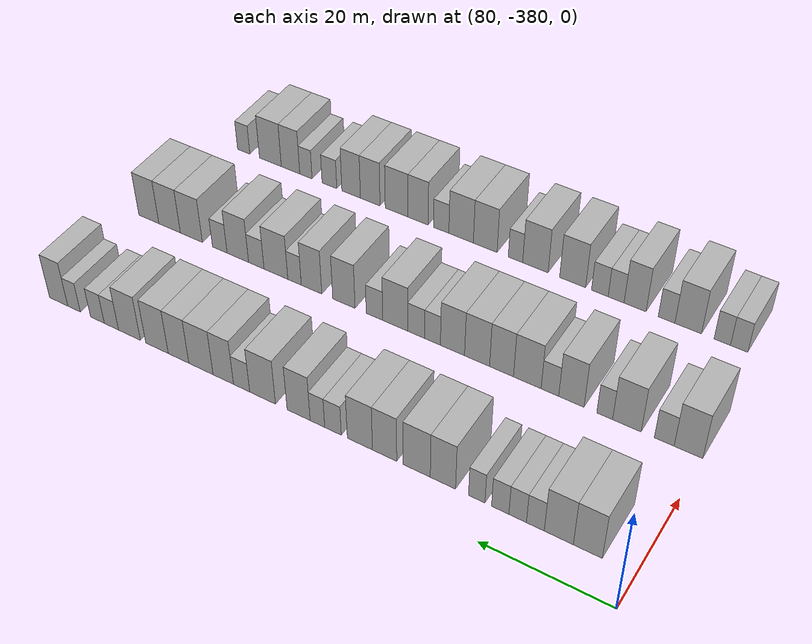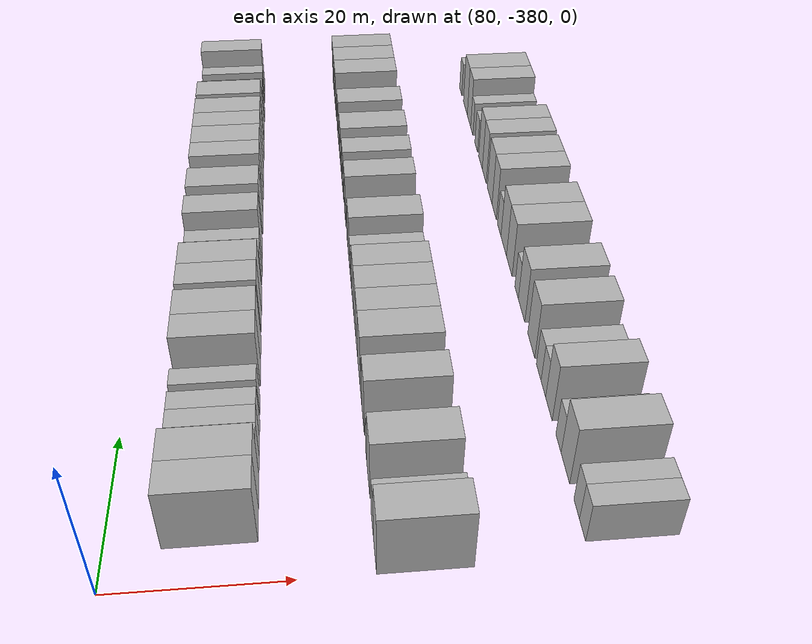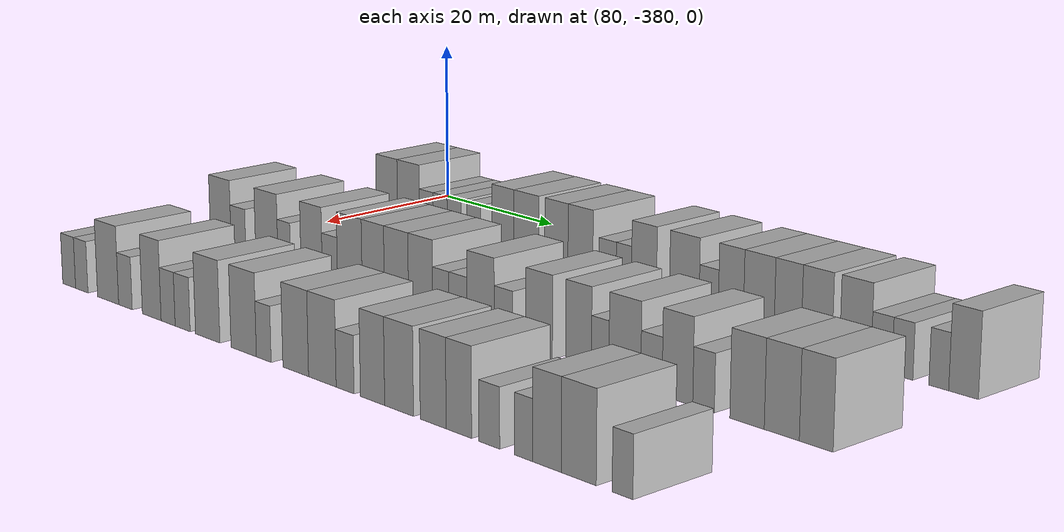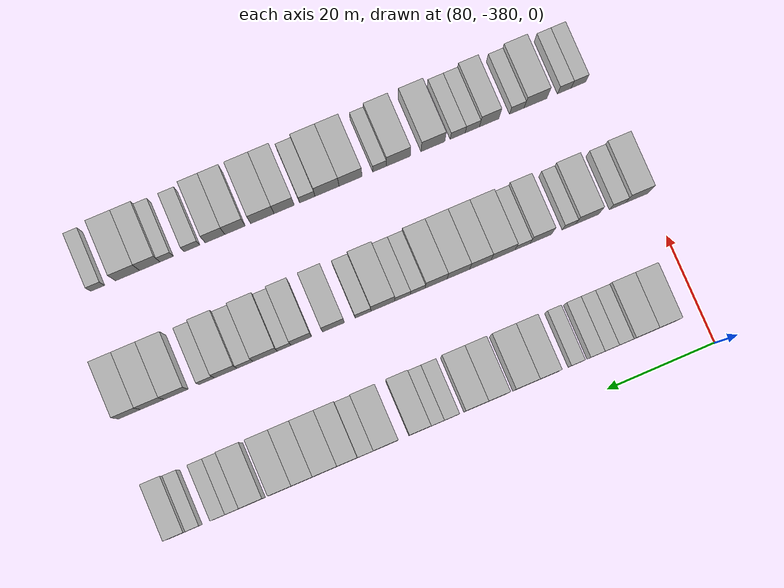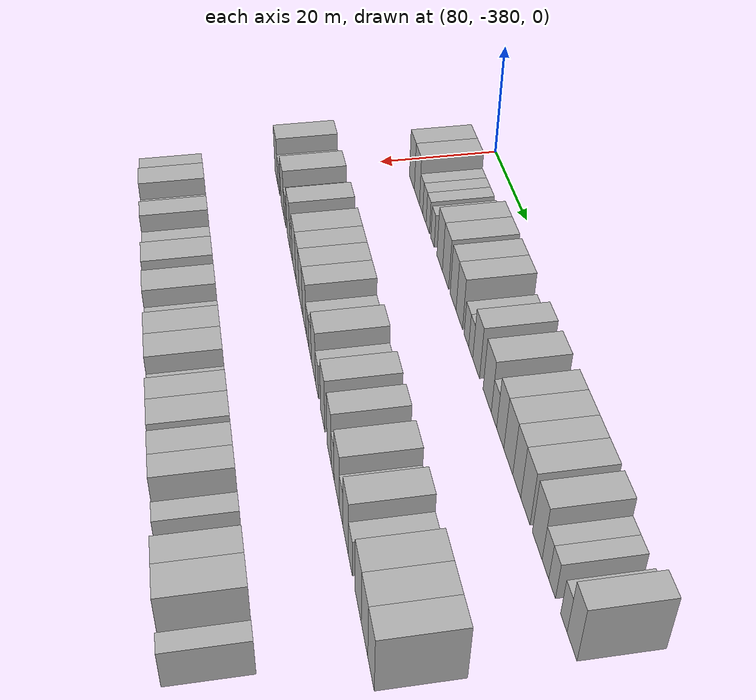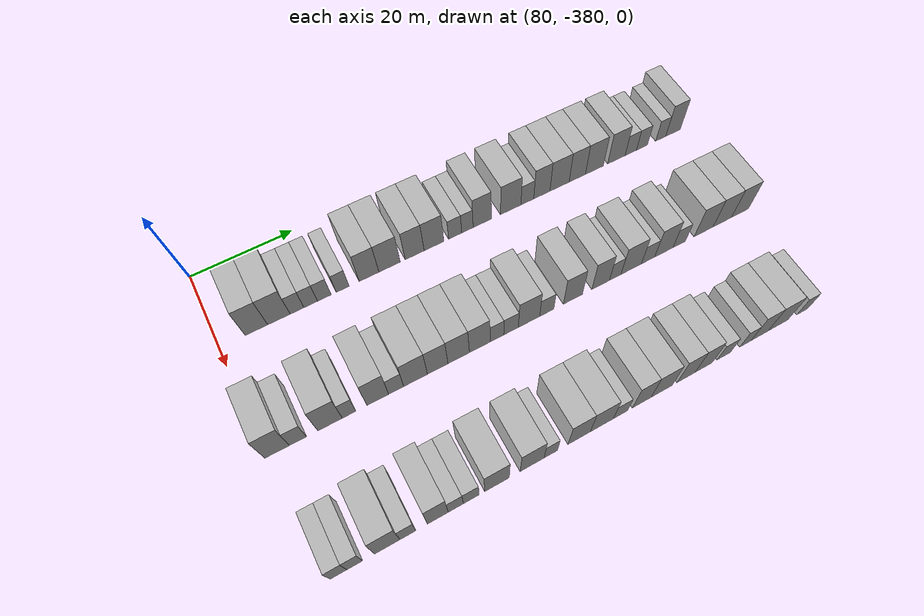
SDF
<sdf version="1.6">
 <world name="default">
  <model name="building_561">
   <static>1</static>
   <pose>91.0000 -373.1026 0 0.000000 0.000000 0.000000</pose>
   <link name="link">
    <pose>0 0 4.50 0 0 0</pose>
    <collision name="collision"><geometry><box><size>10.0000 4.1841 9.0000</size></box></geometry></collision>
    <visual name="visual">
     <cast_shadows>0</cast_shadows>
     <geometry><box><size>10.0000 4.1841 9.0000</size></box></geometry>
     <material>
      <script>
       <uri>model://HANNAS_wall/materials/scripts</uri>
       <uri>model://HANNAS_wall/materials/textures</uri>
       <name>vrc/HANNAS_wall</name>
      </script>
     </material>
    </visual>
   </link>
  </model>
  <model name="building_562">
   <static>1</static>
   <pose>91.0000 -368.8882 0 0.000000 0.000000 0.000000</pose>
   <link name="link">
    <pose>0 0 4.50 0 0 0</pose>
    <collision name="collision"><geometry><box><size>10.0000 4.2448 9.0000</size></box></geometry></collision>
    <visual name="visual">
     <cast_shadows>0</cast_shadows>
     <geometry><box><size>10.0000 4.2448 9.0000</size></box></geometry>
     <material>
      <script>
       <uri>model://HANNAS_wall/materials/scripts</uri>
       <uri>model://HANNAS_wall/materials/textures</uri>
       <name>vrc/HANNAS_wall</name>
      </script>
     </material>
    </visual>
   </link>
  </model>
  <model name="building_563">
   <static>1</static>
   <pose>91.0000 -365.4491 0 0.000000 0.000000 0.000000</pose>
   <link name="link">
    <pose>0 0 3.00 0 0 0</pose>
    <collision name="collision"><geometry><box><size>10.0000 2.6333 6.0000</size></box></geometry></collision>
    <visual name="visual">
     <cast_shadows>0</cast_shadows>
     <geometry><box><size>10.0000 2.6333 6.0000</size></box></geometry>
     <material>
      <script>
       <uri>model://HANNAS_wall/materials/scripts</uri>
       <uri>model://HANNAS_wall/materials/textures</uri>
       <name>vrc/HANNAS_wall</name>
      </script>
     </material>
    </visual>
   </link>
  </model>
  <model name="building_564">
   <static>1</static>
   <pose>91.0000 -362.8180 0 0.000000 0.000000 0.000000</pose>
   <link name="link">
    <pose>0 0 3.00 0 0 0</pose>
    <collision name="collision"><geometry><box><size>10.0000 2.6289 6.0000</size></box></geometry></collision>
    <visual name="visual">
     <cast_shadows>0</cast_shadows>
     <geometry><box><size>10.0000 2.6289 6.0000</size></box></geometry>
     <material>
      <script>
       <uri>model://HANNAS_wall/materials/scripts</uri>
       <uri>model://HANNAS_wall/materials/textures</uri>
       <name>vrc/HANNAS_wall</name>
      </script>
     </material>
    </visual>
   </link>
  </model>
  <model name="building_565">
   <static>1</static>
   <pose>91.0000 -360.1915 0 0.000000 0.000000 0.000000</pose>
   <link name="link">
    <pose>0 0 3.00 0 0 0</pose>
    <collision name="collision"><geometry><box><size>10.0000 2.6241 6.0000</size></box></geometry></collision>
    <visual name="visual">
     <cast_shadows>0</cast_shadows>
     <geometry><box><size>10.0000 2.6241 6.0000</size></box></geometry>
     <material>
      <script>
       <uri>model://HANNAS_wall/materials/scripts</uri>
       <uri>model://HANNAS_wall/materials/textures</uri>
       <name>vrc/HANNAS_wall</name>
      </script>
     </material>
    </visual>
   </link>
  </model>
  <model name="building_566">
   <static>1</static>
   <pose>91.0000 -356.6209 0 0.000000 0.000000 0.000000</pose>
   <link name="link">
    <pose>0 0 3.00 0 0 0</pose>
    <collision name="collision"><geometry><box><size>10.0000 2.5173 6.0000</size></box></geometry></collision>
    <visual name="visual">
     <cast_shadows>0</cast_shadows>
     <geometry><box><size>10.0000 2.5173 6.0000</size></box></geometry>
     <material>
      <script>
       <uri>model://HANNAS_wall/materials/scripts</uri>
       <uri>model://HANNAS_wall/materials/textures</uri>
       <name>vrc/HANNAS_wall</name>
      </script>
     </material>
    </visual>
   </link>
  </model>
  <model name="building_567">
   <static>1</static>
   <pose>91.0000 -351.3866 0 0.000000 0.000000 0.000000</pose>
   <link name="link">
    <pose>0 0 4.50 0 0 0</pose>
    <collision name="collision"><geometry><box><size>10.0000 3.9512 9.0000</size></box></geometry></collision>
    <visual name="visual">
     <cast_shadows>0</cast_shadows>
     <geometry><box><size>10.0000 3.9512 9.0000</size></box></geometry>
     <material>
      <script>
       <uri>model://HANNAS_wall/materials/scripts</uri>
       <uri>model://HANNAS_wall/materials/textures</uri>
       <name>vrc/HANNAS_wall</name>
      </script>
     </material>
    </visual>
   </link>
  </model>
  <model name="building_568">
   <static>1</static>
   <pose>91.0000 -347.2450 0 0.000000 0.000000 0.000000</pose>
   <link name="link">
    <pose>0 0 4.50 0 0 0</pose>
    <collision name="collision"><geometry><box><size>10.0000 4.3321 9.0000</size></box></geometry></collision>
    <visual name="visual">
     <cast_shadows>0</cast_shadows>
     <geometry><box><size>10.0000 4.3321 9.0000</size></box></geometry>
     <material>
      <script>
       <uri>model://HANNAS_wall/materials/scripts</uri>
       <uri>model://HANNAS_wall/materials/textures</uri>
       <name>vrc/HANNAS_wall</name>
      </script>
     </material>
    </visual>
   </link>
  </model>
  <model name="building_569">
   <static>1</static>
   <pose>91.0000 -342.1196 0 0.000000 0.000000 0.000000</pose>
   <link name="link">
    <pose>0 0 4.50 0 0 0</pose>
    <collision name="collision"><geometry><box><size>10.0000 3.9186 9.0000</size></box></geometry></collision>
    <visual name="visual">
     <cast_shadows>0</cast_shadows>
     <geometry><box><size>10.0000 3.9186 9.0000</size></box></geometry>
     <material>
      <script>
       <uri>model://HANNAS_wall/materials/scripts</uri>
       <uri>model://HANNAS_wall/materials/textures</uri>
       <name>vrc/HANNAS_wall</name>
      </script>
     </material>
    </visual>
   </link>
  </model>
  <model name="building_570">
   <static>1</static>
   <pose>91.0000 -338.0976 0 0.000000 0.000000 0.000000</pose>
   <link name="link">
    <pose>0 0 4.50 0 0 0</pose>
    <collision name="collision"><geometry><box><size>10.0000 4.1255 9.0000</size></box></geometry></collision>
    <visual name="visual">
     <cast_shadows>0</cast_shadows>
     <geometry><box><size>10.0000 4.1255 9.0000</size></box></geometry>
     <material>
      <script>
       <uri>model://HANNAS_wall/materials/scripts</uri>
       <uri>model://HANNAS_wall/materials/textures</uri>
       <name>vrc/HANNAS_wall</name>
      </script>
     </material>
    </visual>
   </link>
  </model>
  <model name="building_571">
   <static>1</static>
   <pose>91.0000 -333.6512 0 0.000000 0.000000 0.000000</pose>
   <link name="link">
    <pose>0 0 3.00 0 0 0</pose>
    <collision name="collision"><geometry><box><size>10.0000 2.7671 6.0000</size></box></geometry></collision>
    <visual name="visual">
     <cast_shadows>0</cast_shadows>
     <geometry><box><size>10.0000 2.7671 6.0000</size></box></geometry>
     <material>
      <script>
       <uri>model://HANNAS_wall/materials/scripts</uri>
       <uri>model://HANNAS_wall/materials/textures</uri>
       <name>vrc/HANNAS_wall</name>
      </script>
     </material>
    </visual>
   </link>
  </model>
  <model name="building_572">
   <static>1</static>
   <pose>91.0000 -331.0430 0 0.000000 0.000000 0.000000</pose>
   <link name="link">
    <pose>0 0 3.00 0 0 0</pose>
    <collision name="collision"><geometry><box><size>10.0000 2.4495 6.0000</size></box></geometry></collision>
    <visual name="visual">
     <cast_shadows>0</cast_shadows>
     <geometry><box><size>10.0000 2.4495 6.0000</size></box></geometry>
     <material>
      <script>
       <uri>model://HANNAS_wall/materials/scripts</uri>
       <uri>model://HANNAS_wall/materials/textures</uri>
       <name>vrc/HANNAS_wall</name>
      </script>
     </material>
    </visual>
   </link>
  </model>
  <model name="building_573">
   <static>1</static>
   <pose>91.0000 -327.8552 0 0.000000 0.000000 0.000000</pose>
   <link name="link">
    <pose>0 0 4.50 0 0 0</pose>
    <collision name="collision"><geometry><box><size>10.0000 3.9260 9.0000</size></box></geometry></collision>
    <visual name="visual">
     <cast_shadows>0</cast_shadows>
     <geometry><box><size>10.0000 3.9260 9.0000</size></box></geometry>
     <material>
      <script>
       <uri>model://HANNAS_wall/materials/scripts</uri>
       <uri>model://HANNAS_wall/materials/textures</uri>
       <name>vrc/HANNAS_wall</name>
      </script>
     </material>
    </visual>
   </link>
  </model>
  <model name="building_574">
   <static>1</static>
   <pose>91.0000 -321.6479 0 0.000000 0.000000 0.000000</pose>
   <link name="link">
    <pose>0 0 4.50 0 0 0</pose>
    <collision name="collision"><geometry><box><size>10.0000 4.4885 9.0000</size></box></geometry></collision>
    <visual name="visual">
     <cast_shadows>0</cast_shadows>
     <geometry><box><size>10.0000 4.4885 9.0000</size></box></geometry>
     <material>
      <script>
       <uri>model://HANNAS_wall/materials/scripts</uri>
       <uri>model://HANNAS_wall/materials/textures</uri>
       <name>vrc/HANNAS_wall</name>
      </script>
     </material>
    </visual>
   </link>
  </model>
  <model name="building_575">
   <static>1</static>
   <pose>91.0000 -317.9782 0 0.000000 0.000000 0.000000</pose>
   <link name="link">
    <pose>0 0 3.00 0 0 0</pose>
    <collision name="collision"><geometry><box><size>10.0000 2.8510 6.0000</size></box></geometry></collision>
    <visual name="visual">
     <cast_shadows>0</cast_shadows>
     <geometry><box><size>10.0000 2.8510 6.0000</size></box></geometry>
     <material>
      <script>
       <uri>model://HANNAS_wall/materials/scripts</uri>
       <uri>model://HANNAS_wall/materials/textures</uri>
       <name>vrc/HANNAS_wall</name>
      </script>
     </material>
    </visual>
   </link>
  </model>
  <model name="building_576">
   <static>1</static>
   <pose>91.0000 -314.7256 0 0.000000 0.000000 0.000000</pose>
   <link name="link">
    <pose>0 0 4.50 0 0 0</pose>
    <collision name="collision"><geometry><box><size>10.0000 3.6543 9.0000</size></box></geometry></collision>
    <visual name="visual">
     <cast_shadows>0</cast_shadows>
     <geometry><box><size>10.0000 3.6543 9.0000</size></box></geometry>
     <material>
      <script>
       <uri>model://HANNAS_wall/materials/scripts</uri>
       <uri>model://HANNAS_wall/materials/textures</uri>
       <name>vrc/HANNAS_wall</name>
      </script>
     </material>
    </visual>
   </link>
  </model>
  <model name="building_577">
   <static>1</static>
   <pose>91.0000 -310.7079 0 0.000000 0.000000 0.000000</pose>
   <link name="link">
    <pose>0 0 4.50 0 0 0</pose>
    <collision name="collision"><geometry><box><size>10.0000 4.3811 9.0000</size></box></geometry></collision>
    <visual name="visual">
     <cast_shadows>0</cast_shadows>
     <geometry><box><size>10.0000 4.3811 9.0000</size></box></geometry>
     <material>
      <script>
       <uri>model://HANNAS_wall/materials/scripts</uri>
       <uri>model://HANNAS_wall/materials/textures</uri>
       <name>vrc/HANNAS_wall</name>
      </script>
     </material>
    </visual>
   </link>
  </model>
  <model name="building_578">
   <static>1</static>
   <pose>91.0000 -306.6256 0 0.000000 0.000000 0.000000</pose>
   <link name="link">
    <pose>0 0 4.50 0 0 0</pose>
    <collision name="collision"><geometry><box><size>10.0000 3.7835 9.0000</size></box></geometry></collision>
    <visual name="visual">
     <cast_shadows>0</cast_shadows>
     <geometry><box><size>10.0000 3.7835 9.0000</size></box></geometry>
     <material>
      <script>
       <uri>model://HANNAS_wall/materials/scripts</uri>
       <uri>model://HANNAS_wall/materials/textures</uri>
       <name>vrc/HANNAS_wall</name>
      </script>
     </material>
    </visual>
   </link>
  </model>
  <model name="building_579">
   <static>1</static>
   <pose>91.0000 -302.6417 0 0.000000 0.000000 0.000000</pose>
   <link name="link">
    <pose>0 0 4.50 0 0 0</pose>
    <collision name="collision"><geometry><box><size>10.0000 4.1842 9.0000</size></box></geometry></collision>
    <visual name="visual">
     <cast_shadows>0</cast_shadows>
     <geometry><box><size>10.0000 4.1842 9.0000</size></box></geometry>
     <material>
      <script>
       <uri>model://HANNAS_wall/materials/scripts</uri>
       <uri>model://HANNAS_wall/materials/textures</uri>
       <name>vrc/HANNAS_wall</name>
      </script>
     </material>
    </visual>
   </link>
  </model>
  <model name="building_580">
   <static>1</static>
   <pose>91.0000 -297.4705 0 0.000000 0.000000 0.000000</pose>
   <link name="link">
    <pose>0 0 4.50 0 0 0</pose>
    <collision name="collision"><geometry><box><size>10.0000 4.1581 9.0000</size></box></geometry></collision>
    <visual name="visual">
     <cast_shadows>0</cast_shadows>
     <geometry><box><size>10.0000 4.1581 9.0000</size></box></geometry>
     <material>
      <script>
       <uri>model://HANNAS_wall/materials/scripts</uri>
       <uri>model://HANNAS_wall/materials/textures</uri>
       <name>vrc/HANNAS_wall</name>
      </script>
     </material>
    </visual>
   </link>
  </model>
  <model name="building_581">
   <static>1</static>
   <pose>91.0000 -294.0285 0 0.000000 0.000000 0.000000</pose>
   <link name="link">
    <pose>0 0 3.00 0 0 0</pose>
    <collision name="collision"><geometry><box><size>10.0000 2.7260 6.0000</size></box></geometry></collision>
    <visual name="visual">
     <cast_shadows>0</cast_shadows>
     <geometry><box><size>10.0000 2.7260 6.0000</size></box></geometry>
     <material>
      <script>
       <uri>model://HANNAS_wall/materials/scripts</uri>
       <uri>model://HANNAS_wall/materials/textures</uri>
       <name>vrc/HANNAS_wall</name>
      </script>
     </material>
    </visual>
   </link>
  </model>
  <model name="building_582">
   <static>1</static>
   <pose>91.0000 -291.3356 0 0.000000 0.000000 0.000000</pose>
   <link name="link">
    <pose>0 0 3.00 0 0 0</pose>
    <collision name="collision"><geometry><box><size>10.0000 2.6598 6.0000</size></box></geometry></collision>
    <visual name="visual">
     <cast_shadows>0</cast_shadows>
     <geometry><box><size>10.0000 2.6598 6.0000</size></box></geometry>
     <material>
      <script>
       <uri>model://HANNAS_wall/materials/scripts</uri>
       <uri>model://HANNAS_wall/materials/textures</uri>
       <name>vrc/HANNAS_wall</name>
      </script>
     </material>
    </visual>
   </link>
  </model>
  <model name="building_583">
   <static>1</static>
   <pose>91.0000 -286.7794 0 0.000000 0.000000 0.000000</pose>
   <link name="link">
    <pose>0 0 3.00 0 0 0</pose>
    <collision name="collision"><geometry><box><size>10.0000 2.4525 6.0000</size></box></geometry></collision>
    <visual name="visual">
     <cast_shadows>0</cast_shadows>
     <geometry><box><size>10.0000 2.4525 6.0000</size></box></geometry>
     <material>
      <script>
       <uri>model://HANNAS_wall/materials/scripts</uri>
       <uri>model://HANNAS_wall/materials/textures</uri>
       <name>vrc/HANNAS_wall</name>
      </script>
     </material>
    </visual>
   </link>
  </model>
  <model name="building_584">
   <static>1</static>
   <pose>91.0000 -283.7495 0 0.000000 0.000000 0.000000</pose>
   <link name="link">
    <pose>0 0 4.50 0 0 0</pose>
    <collision name="collision"><geometry><box><size>10.0000 3.6072 9.0000</size></box></geometry></collision>
    <visual name="visual">
     <cast_shadows>0</cast_shadows>
     <geometry><box><size>10.0000 3.6072 9.0000</size></box></geometry>
     <material>
      <script>
       <uri>model://HANNAS_wall/materials/scripts</uri>
       <uri>model://HANNAS_wall/materials/textures</uri>
       <name>vrc/HANNAS_wall</name>
      </script>
     </material>
    </visual>
   </link>
  </model>
  <model name="building_740">
   <static>1</static>
   <pose>113.0000 -377.8678 0 0.000000 0.000000 0.000000</pose>
   <link name="link">
    <pose>0 0 4.50 0 0 0</pose>
    <collision name="collision"><geometry><box><size>10.0000 4.2645 9.0000</size></box></geometry></collision>
    <visual name="visual">
     <cast_shadows>0</cast_shadows>
     <geometry><box><size>10.0000 4.2645 9.0000</size></box></geometry>
     <material>
      <script>
       <uri>model://HANNAS_wall/materials/scripts</uri>
       <uri>model://HANNAS_wall/materials/textures</uri>
       <name>vrc/HANNAS_wall</name>
      </script>
     </material>
    </visual>
   </link>
  </model>
  <model name="building_741">
   <static>1</static>
   <pose>113.0000 -374.2464 0 0.000000 0.000000 0.000000</pose>
   <link name="link">
    <pose>0 0 3.00 0 0 0</pose>
    <collision name="collision"><geometry><box><size>10.0000 2.9784 6.0000</size></box></geometry></collision>
    <visual name="visual">
     <cast_shadows>0</cast_shadows>
     <geometry><box><size>10.0000 2.9784 6.0000</size></box></geometry>
     <material>
      <script>
       <uri>model://HANNAS_wall/materials/scripts</uri>
       <uri>model://HANNAS_wall/materials/textures</uri>
       <name>vrc/HANNAS_wall</name>
      </script>
     </material>
    </visual>
   </link>
  </model>
  <model name="building_742">
   <static>1</static>
   <pose>113.0000 -368.5615 0 0.000000 0.000000 0.000000</pose>
   <link name="link">
    <pose>0 0 4.50 0 0 0</pose>
    <collision name="collision"><geometry><box><size>10.0000 4.3914 9.0000</size></box></geometry></collision>
    <visual name="visual">
     <cast_shadows>0</cast_shadows>
     <geometry><box><size>10.0000 4.3914 9.0000</size></box></geometry>
     <material>
      <script>
       <uri>model://HANNAS_wall/materials/scripts</uri>
       <uri>model://HANNAS_wall/materials/textures</uri>
       <name>vrc/HANNAS_wall</name>
      </script>
     </material>
    </visual>
   </link>
  </model>
  <model name="building_743">
   <static>1</static>
   <pose>113.0000 -365.1352 0 0.000000 0.000000 0.000000</pose>
   <link name="link">
    <pose>0 0 3.00 0 0 0</pose>
    <collision name="collision"><geometry><box><size>10.0000 2.4612 6.0000</size></box></geometry></collision>
    <visual name="visual">
     <cast_shadows>0</cast_shadows>
     <geometry><box><size>10.0000 2.4612 6.0000</size></box></geometry>
     <material>
      <script>
       <uri>model://HANNAS_wall/materials/scripts</uri>
       <uri>model://HANNAS_wall/materials/textures</uri>
       <name>vrc/HANNAS_wall</name>
      </script>
     </material>
    </visual>
   </link>
  </model>
  <model name="building_744">
   <static>1</static>
   <pose>113.0000 -359.8933 0 0.000000 0.000000 0.000000</pose>
   <link name="link">
    <pose>0 0 4.50 0 0 0</pose>
    <collision name="collision"><geometry><box><size>10.0000 4.0225 9.0000</size></box></geometry></collision>
    <visual name="visual">
     <cast_shadows>0</cast_shadows>
     <geometry><box><size>10.0000 4.0225 9.0000</size></box></geometry>
     <material>
      <script>
       <uri>model://HANNAS_wall/materials/scripts</uri>
       <uri>model://HANNAS_wall/materials/textures</uri>
       <name>vrc/HANNAS_wall</name>
      </script>
     </material>
    </visual>
   </link>
  </model>
  <model name="building_745">
   <static>1</static>
   <pose>113.0000 -356.4724 0 0.000000 0.000000 0.000000</pose>
   <link name="link">
    <pose>0 0 3.00 0 0 0</pose>
    <collision name="collision"><geometry><box><size>10.0000 2.8193 6.0000</size></box></geometry></collision>
    <visual name="visual">
     <cast_shadows>0</cast_shadows>
     <geometry><box><size>10.0000 2.8193 6.0000</size></box></geometry>
     <material>
      <script>
       <uri>model://HANNAS_wall/materials/scripts</uri>
       <uri>model://HANNAS_wall/materials/textures</uri>
       <name>vrc/HANNAS_wall</name>
      </script>
     </material>
    </visual>
   </link>
  </model>
  <model name="building_746">
   <static>1</static>
   <pose>113.0000 -352.8179 0 0.000000 0.000000 0.000000</pose>
   <link name="link">
    <pose>0 0 4.50 0 0 0</pose>
    <collision name="collision"><geometry><box><size>10.0000 4.4898 9.0000</size></box></geometry></collision>
    <visual name="visual">
     <cast_shadows>0</cast_shadows>
     <geometry><box><size>10.0000 4.4898 9.0000</size></box></geometry>
     <material>
      <script>
       <uri>model://HANNAS_wall/materials/scripts</uri>
       <uri>model://HANNAS_wall/materials/textures</uri>
       <name>vrc/HANNAS_wall</name>
      </script>
     </material>
    </visual>
   </link>
  </model>
  <model name="building_747">
   <static>1</static>
   <pose>113.0000 -348.5991 0 0.000000 0.000000 0.000000</pose>
   <link name="link">
    <pose>0 0 4.50 0 0 0</pose>
    <collision name="collision"><geometry><box><size>10.0000 3.9479 9.0000</size></box></geometry></collision>
    <visual name="visual">
     <cast_shadows>0</cast_shadows>
     <geometry><box><size>10.0000 3.9479 9.0000</size></box></geometry>
     <material>
      <script>
       <uri>model://HANNAS_wall/materials/scripts</uri>
       <uri>model://HANNAS_wall/materials/textures</uri>
       <name>vrc/HANNAS_wall</name>
      </script>
     </material>
    </visual>
   </link>
  </model>
  <model name="building_748">
   <static>1</static>
   <pose>113.0000 -344.5308 0 0.000000 0.000000 0.000000</pose>
   <link name="link">
    <pose>0 0 4.50 0 0 0</pose>
    <collision name="collision"><geometry><box><size>10.0000 4.1888 9.0000</size></box></geometry></collision>
    <visual name="visual">
     <cast_shadows>0</cast_shadows>
     <geometry><box><size>10.0000 4.1888 9.0000</size></box></geometry>
     <material>
      <script>
       <uri>model://HANNAS_wall/materials/scripts</uri>
       <uri>model://HANNAS_wall/materials/textures</uri>
       <name>vrc/HANNAS_wall</name>
      </script>
     </material>
    </visual>
   </link>
  </model>
  <model name="building_749">
   <static>1</static>
   <pose>113.0000 -340.3834 0 0.000000 0.000000 0.000000</pose>
   <link name="link">
    <pose>0 0 4.50 0 0 0</pose>
    <collision name="collision"><geometry><box><size>10.0000 4.1060 9.0000</size></box></geometry></collision>
    <visual name="visual">
     <cast_shadows>0</cast_shadows>
     <geometry><box><size>10.0000 4.1060 9.0000</size></box></geometry>
     <material>
      <script>
       <uri>model://HANNAS_wall/materials/scripts</uri>
       <uri>model://HANNAS_wall/materials/textures</uri>
       <name>vrc/HANNAS_wall</name>
      </script>
     </material>
    </visual>
   </link>
  </model>
  <model name="building_750">
   <static>1</static>
   <pose>113.0000 -336.9723 0 0.000000 0.000000 0.000000</pose>
   <link name="link">
    <pose>0 0 3.00 0 0 0</pose>
    <collision name="collision"><geometry><box><size>10.0000 2.7163 6.0000</size></box></geometry></collision>
    <visual name="visual">
     <cast_shadows>0</cast_shadows>
     <geometry><box><size>10.0000 2.7163 6.0000</size></box></geometry>
     <material>
      <script>
       <uri>model://HANNAS_wall/materials/scripts</uri>
       <uri>model://HANNAS_wall/materials/textures</uri>
       <name>vrc/HANNAS_wall</name>
      </script>
     </material>
    </visual>
   </link>
  </model>
  <model name="building_751">
   <static>1</static>
   <pose>113.0000 -334.1432 0 0.000000 0.000000 0.000000</pose>
   <link name="link">
    <pose>0 0 3.00 0 0 0</pose>
    <collision name="collision"><geometry><box><size>10.0000 2.9419 6.0000</size></box></geometry></collision>
    <visual name="visual">
     <cast_shadows>0</cast_shadows>
     <geometry><box><size>10.0000 2.9419 6.0000</size></box></geometry>
     <material>
      <script>
       <uri>model://HANNAS_wall/materials/scripts</uri>
       <uri>model://HANNAS_wall/materials/textures</uri>
       <name>vrc/HANNAS_wall</name>
      </script>
     </material>
    </visual>
   </link>
  </model>
  <model name="building_752">
   <static>1</static>
   <pose>113.0000 -330.4860 0 0.000000 0.000000 0.000000</pose>
   <link name="link">
    <pose>0 0 4.50 0 0 0</pose>
    <collision name="collision"><geometry><box><size>10.0000 4.3724 9.0000</size></box></geometry></collision>
    <visual name="visual">
     <cast_shadows>0</cast_shadows>
     <geometry><box><size>10.0000 4.3724 9.0000</size></box></geometry>
     <material>
      <script>
       <uri>model://HANNAS_wall/materials/scripts</uri>
       <uri>model://HANNAS_wall/materials/textures</uri>
       <name>vrc/HANNAS_wall</name>
      </script>
     </material>
    </visual>
   </link>
  </model>
  <model name="building_753">
   <static>1</static>
   <pose>113.0000 -326.8344 0 0.000000 0.000000 0.000000</pose>
   <link name="link">
    <pose>0 0 3.00 0 0 0</pose>
    <collision name="collision"><geometry><box><size>10.0000 2.9310 6.0000</size></box></geometry></collision>
    <visual name="visual">
     <cast_shadows>0</cast_shadows>
     <geometry><box><size>10.0000 2.9310 6.0000</size></box></geometry>
     <material>
      <script>
       <uri>model://HANNAS_wall/materials/scripts</uri>
       <uri>model://HANNAS_wall/materials/textures</uri>
       <name>vrc/HANNAS_wall</name>
      </script>
     </material>
    </visual>
   </link>
  </model>
  <model name="building_754">
   <static>1</static>
   <pose>113.0000 -321.3474 0 0.000000 0.000000 0.000000</pose>
   <link name="link">
    <pose>0 0 4.50 0 0 0</pose>
    <collision name="collision"><geometry><box><size>10.0000 4.0429 9.0000</size></box></geometry></collision>
    <visual name="visual">
     <cast_shadows>0</cast_shadows>
     <geometry><box><size>10.0000 4.0429 9.0000</size></box></geometry>
     <material>
      <script>
       <uri>model://HANNAS_wall/materials/scripts</uri>
       <uri>model://HANNAS_wall/materials/textures</uri>
       <name>vrc/HANNAS_wall</name>
      </script>
     </material>
    </visual>
   </link>
  </model>
  <model name="building_755">
   <static>1</static>
   <pose>113.0000 -315.4352 0 0.000000 0.000000 0.000000</pose>
   <link name="link">
    <pose>0 0 4.50 0 0 0</pose>
    <collision name="collision"><geometry><box><size>10.0000 3.7817 9.0000</size></box></geometry></collision>
    <visual name="visual">
     <cast_shadows>0</cast_shadows>
     <geometry><box><size>10.0000 3.7817 9.0000</size></box></geometry>
     <material>
      <script>
       <uri>model://HANNAS_wall/materials/scripts</uri>
       <uri>model://HANNAS_wall/materials/textures</uri>
       <name>vrc/HANNAS_wall</name>
      </script>
     </material>
    </visual>
   </link>
  </model>
  <model name="building_756">
   <static>1</static>
   <pose>113.0000 -312.2838 0 0.000000 0.000000 0.000000</pose>
   <link name="link">
    <pose>0 0 3.00 0 0 0</pose>
    <collision name="collision"><geometry><box><size>10.0000 2.5210 6.0000</size></box></geometry></collision>
    <visual name="visual">
     <cast_shadows>0</cast_shadows>
     <geometry><box><size>10.0000 2.5210 6.0000</size></box></geometry>
     <material>
      <script>
       <uri>model://HANNAS_wall/materials/scripts</uri>
       <uri>model://HANNAS_wall/materials/textures</uri>
       <name>vrc/HANNAS_wall</name>
      </script>
     </material>
    </visual>
   </link>
  </model>
  <model name="building_757">
   <static>1</static>
   <pose>113.0000 -308.7760 0 0.000000 0.000000 0.000000</pose>
   <link name="link">
    <pose>0 0 4.50 0 0 0</pose>
    <collision name="collision"><geometry><box><size>10.0000 4.4947 9.0000</size></box></geometry></collision>
    <visual name="visual">
     <cast_shadows>0</cast_shadows>
     <geometry><box><size>10.0000 4.4947 9.0000</size></box></geometry>
     <material>
      <script>
       <uri>model://HANNAS_wall/materials/scripts</uri>
       <uri>model://HANNAS_wall/materials/textures</uri>
       <name>vrc/HANNAS_wall</name>
      </script>
     </material>
    </visual>
   </link>
  </model>
  <model name="building_758">
   <static>1</static>
   <pose>113.0000 -305.0556 0 0.000000 0.000000 0.000000</pose>
   <link name="link">
    <pose>0 0 3.00 0 0 0</pose>
    <collision name="collision"><geometry><box><size>10.0000 2.9462 6.0000</size></box></geometry></collision>
    <visual name="visual">
     <cast_shadows>0</cast_shadows>
     <geometry><box><size>10.0000 2.9462 6.0000</size></box></geometry>
     <material>
      <script>
       <uri>model://HANNAS_wall/materials/scripts</uri>
       <uri>model://HANNAS_wall/materials/textures</uri>
       <name>vrc/HANNAS_wall</name>
      </script>
     </material>
    </visual>
   </link>
  </model>
  <model name="building_759">
   <static>1</static>
   <pose>113.0000 -301.5106 0 0.000000 0.000000 0.000000</pose>
   <link name="link">
    <pose>0 0 4.50 0 0 0</pose>
    <collision name="collision"><geometry><box><size>10.0000 4.1436 9.0000</size></box></geometry></collision>
    <visual name="visual">
     <cast_shadows>0</cast_shadows>
     <geometry><box><size>10.0000 4.1436 9.0000</size></box></geometry>
     <material>
      <script>
       <uri>model://HANNAS_wall/materials/scripts</uri>
       <uri>model://HANNAS_wall/materials/textures</uri>
       <name>vrc/HANNAS_wall</name>
      </script>
     </material>
    </visual>
   </link>
  </model>
  <model name="building_760">
   <static>1</static>
   <pose>113.0000 -298.0074 0 0.000000 0.000000 0.000000</pose>
   <link name="link">
    <pose>0 0 3.00 0 0 0</pose>
    <collision name="collision"><geometry><box><size>10.0000 2.8628 6.0000</size></box></geometry></collision>
    <visual name="visual">
     <cast_shadows>0</cast_shadows>
     <geometry><box><size>10.0000 2.8628 6.0000</size></box></geometry>
     <material>
      <script>
       <uri>model://HANNAS_wall/materials/scripts</uri>
       <uri>model://HANNAS_wall/materials/textures</uri>
       <name>vrc/HANNAS_wall</name>
      </script>
     </material>
    </visual>
   </link>
  </model>
  <model name="building_761">
   <static>1</static>
   <pose>113.0000 -292.3835 0 0.000000 0.000000 0.000000</pose>
   <link name="link">
    <pose>0 0 4.50 0 0 0</pose>
    <collision name="collision"><geometry><box><size>10.0000 4.3852 9.0000</size></box></geometry></collision>
    <visual name="visual">
     <cast_shadows>0</cast_shadows>
     <geometry><box><size>10.0000 4.3852 9.0000</size></box></geometry>
     <material>
      <script>
       <uri>model://HANNAS_wall/materials/scripts</uri>
       <uri>model://HANNAS_wall/materials/textures</uri>
       <name>vrc/HANNAS_wall</name>
      </script>
     </material>
    </visual>
   </link>
  </model>
  <model name="building_762">
   <static>1</static>
   <pose>113.0000 -288.0185 0 0.000000 0.000000 0.000000</pose>
   <link name="link">
    <pose>0 0 4.50 0 0 0</pose>
    <collision name="collision"><geometry><box><size>10.0000 4.3447 9.0000</size></box></geometry></collision>
    <visual name="visual">
     <cast_shadows>0</cast_shadows>
     <geometry><box><size>10.0000 4.3447 9.0000</size></box></geometry>
     <material>
      <script>
       <uri>model://HANNAS_wall/materials/scripts</uri>
       <uri>model://HANNAS_wall/materials/textures</uri>
       <name>vrc/HANNAS_wall</name>
      </script>
     </material>
    </visual>
   </link>
  </model>
  <model name="building_763">
   <static>1</static>
   <pose>113.0000 -283.8089 0 0.000000 0.000000 0.000000</pose>
   <link name="link">
    <pose>0 0 4.50 0 0 0</pose>
    <collision name="collision"><geometry><box><size>10.0000 4.0746 9.0000</size></box></geometry></collision>
    <visual name="visual">
     <cast_shadows>0</cast_shadows>
     <geometry><box><size>10.0000 4.0746 9.0000</size></box></geometry>
     <material>
      <script>
       <uri>model://HANNAS_wall/materials/scripts</uri>
       <uri>model://HANNAS_wall/materials/textures</uri>
       <name>vrc/HANNAS_wall</name>
      </script>
     </material>
    </visual>
   </link>
  </model>
  <model name="building_926">
   <static>1</static>
   <pose>135.0000 -376.6352 0 0.000000 0.000000 0.000000</pose>
   <link name="link">
    <pose>0 0 3.00 0 0 0</pose>
    <collision name="collision"><geometry><box><size>10.0000 2.7295 6.0000</size></box></geometry></collision>
    <visual name="visual">
     <cast_shadows>0</cast_shadows>
     <geometry><box><size>10.0000 2.7295 6.0000</size></box></geometry>
     <material>
      <script>
       <uri>model://HANNAS_wall/materials/scripts</uri>
       <uri>model://HANNAS_wall/materials/textures</uri>
       <name>vrc/HANNAS_wall</name>
      </script>
     </material>
    </visual>
   </link>
  </model>
  <model name="building_927">
   <static>1</static>
   <pose>135.0000 -373.9714 0 0.000000 0.000000 0.000000</pose>
   <link name="link">
    <pose>0 0 3.00 0 0 0</pose>
    <collision name="collision"><geometry><box><size>10.0000 2.5982 6.0000</size></box></geometry></collision>
    <visual name="visual">
     <cast_shadows>0</cast_shadows>
     <geometry><box><size>10.0000 2.5982 6.0000</size></box></geometry>
     <material>
      <script>
       <uri>model://HANNAS_wall/materials/scripts</uri>
       <uri>model://HANNAS_wall/materials/textures</uri>
       <name>vrc/HANNAS_wall</name>
      </script>
     </material>
    </visual>
   </link>
  </model>
  <model name="building_928">
   <static>1</static>
   <pose>135.0000 -368.5266 0 0.000000 0.000000 0.000000</pose>
   <link name="link">
    <pose>0 0 4.50 0 0 0</pose>
    <collision name="collision"><geometry><box><size>10.0000 4.2912 9.0000</size></box></geometry></collision>
    <visual name="visual">
     <cast_shadows>0</cast_shadows>
     <geometry><box><size>10.0000 4.2912 9.0000</size></box></geometry>
     <material>
      <script>
       <uri>model://HANNAS_wall/materials/scripts</uri>
       <uri>model://HANNAS_wall/materials/textures</uri>
       <name>vrc/HANNAS_wall</name>
      </script>
     </material>
    </visual>
   </link>
  </model>
  <model name="building_929">
   <static>1</static>
   <pose>135.0000 -365.0175 0 0.000000 0.000000 0.000000</pose>
   <link name="link">
    <pose>0 0 3.00 0 0 0</pose>
    <collision name="collision"><geometry><box><size>10.0000 2.7270 6.0000</size></box></geometry></collision>
    <visual name="visual">
     <cast_shadows>0</cast_shadows>
     <geometry><box><size>10.0000 2.7270 6.0000</size></box></geometry>
     <material>
      <script>
       <uri>model://HANNAS_wall/materials/scripts</uri>
       <uri>model://HANNAS_wall/materials/textures</uri>
       <name>vrc/HANNAS_wall</name>
      </script>
     </material>
    </visual>
   </link>
  </model>
  <model name="building_930">
   <static>1</static>
   <pose>135.0000 -359.8283 0 0.000000 0.000000 0.000000</pose>
   <link name="link">
    <pose>0 0 4.50 0 0 0</pose>
    <collision name="collision"><geometry><box><size>10.0000 3.6514 9.0000</size></box></geometry></collision>
    <visual name="visual">
     <cast_shadows>0</cast_shadows>
     <geometry><box><size>10.0000 3.6514 9.0000</size></box></geometry>
     <material>
      <script>
       <uri>model://HANNAS_wall/materials/scripts</uri>
       <uri>model://HANNAS_wall/materials/textures</uri>
       <name>vrc/HANNAS_wall</name>
      </script>
     </material>
    </visual>
   </link>
  </model>
  <model name="building_931">
   <static>1</static>
   <pose>135.0000 -356.6637 0 0.000000 0.000000 0.000000</pose>
   <link name="link">
    <pose>0 0 3.00 0 0 0</pose>
    <collision name="collision"><geometry><box><size>10.0000 2.6779 6.0000</size></box></geometry></collision>
    <visual name="visual">
     <cast_shadows>0</cast_shadows>
     <geometry><box><size>10.0000 2.6779 6.0000</size></box></geometry>
     <material>
      <script>
       <uri>model://HANNAS_wall/materials/scripts</uri>
       <uri>model://HANNAS_wall/materials/textures</uri>
       <name>vrc/HANNAS_wall</name>
      </script>
     </material>
    </visual>
   </link>
  </model>
  <model name="building_932">
   <static>1</static>
   <pose>135.0000 -353.9137 0 0.000000 0.000000 0.000000</pose>
   <link name="link">
    <pose>0 0 3.00 0 0 0</pose>
    <collision name="collision"><geometry><box><size>10.0000 2.8221 6.0000</size></box></geometry></collision>
    <visual name="visual">
     <cast_shadows>0</cast_shadows>
     <geometry><box><size>10.0000 2.8221 6.0000</size></box></geometry>
     <material>
      <script>
       <uri>model://HANNAS_wall/materials/scripts</uri>
       <uri>model://HANNAS_wall/materials/textures</uri>
       <name>vrc/HANNAS_wall</name>
      </script>
     </material>
    </visual>
   </link>
  </model>
  <model name="building_933">
   <static>1</static>
   <pose>135.0000 -349.2690 0 0.000000 0.000000 0.000000</pose>
   <link name="link">
    <pose>0 0 4.50 0 0 0</pose>
    <collision name="collision"><geometry><box><size>10.0000 4.4672 9.0000</size></box></geometry></collision>
    <visual name="visual">
     <cast_shadows>0</cast_shadows>
     <geometry><box><size>10.0000 4.4672 9.0000</size></box></geometry>
     <material>
      <script>
       <uri>model://HANNAS_wall/materials/scripts</uri>
       <uri>model://HANNAS_wall/materials/textures</uri>
       <name>vrc/HANNAS_wall</name>
      </script>
     </material>
    </visual>
   </link>
  </model>
  <model name="building_934">
   <static>1</static>
   <pose>135.0000 -342.7995 0 0.000000 0.000000 0.000000</pose>
   <link name="link">
    <pose>0 0 4.50 0 0 0</pose>
    <collision name="collision"><geometry><box><size>10.0000 4.4717 9.0000</size></box></geometry></collision>
    <visual name="visual">
     <cast_shadows>0</cast_shadows>
     <geometry><box><size>10.0000 4.4717 9.0000</size></box></geometry>
     <material>
      <script>
       <uri>model://HANNAS_wall/materials/scripts</uri>
       <uri>model://HANNAS_wall/materials/textures</uri>
       <name>vrc/HANNAS_wall</name>
      </script>
     </material>
    </visual>
   </link>
  </model>
  <model name="building_935">
   <static>1</static>
   <pose>135.0000 -339.2883 0 0.000000 0.000000 0.000000</pose>
   <link name="link">
    <pose>0 0 3.00 0 0 0</pose>
    <collision name="collision"><geometry><box><size>10.0000 2.5507 6.0000</size></box></geometry></collision>
    <visual name="visual">
     <cast_shadows>0</cast_shadows>
     <geometry><box><size>10.0000 2.5507 6.0000</size></box></geometry>
     <material>
      <script>
       <uri>model://HANNAS_wall/materials/scripts</uri>
       <uri>model://HANNAS_wall/materials/textures</uri>
       <name>vrc/HANNAS_wall</name>
      </script>
     </material>
    </visual>
   </link>
  </model>
  <model name="building_936">
   <static>1</static>
   <pose>135.0000 -333.8652 0 0.000000 0.000000 0.000000</pose>
   <link name="link">
    <pose>0 0 4.50 0 0 0</pose>
    <collision name="collision"><geometry><box><size>10.0000 4.2955 9.0000</size></box></geometry></collision>
    <visual name="visual">
     <cast_shadows>0</cast_shadows>
     <geometry><box><size>10.0000 4.2955 9.0000</size></box></geometry>
     <material>
      <script>
       <uri>model://HANNAS_wall/materials/scripts</uri>
       <uri>model://HANNAS_wall/materials/textures</uri>
       <name>vrc/HANNAS_wall</name>
      </script>
     </material>
    </visual>
   </link>
  </model>
  <model name="building_937">
   <static>1</static>
   <pose>135.0000 -329.4700 0 0.000000 0.000000 0.000000</pose>
   <link name="link">
    <pose>0 0 4.50 0 0 0</pose>
    <collision name="collision"><geometry><box><size>10.0000 4.4949 9.0000</size></box></geometry></collision>
    <visual name="visual">
     <cast_shadows>0</cast_shadows>
     <geometry><box><size>10.0000 4.4949 9.0000</size></box></geometry>
     <material>
      <script>
       <uri>model://HANNAS_wall/materials/scripts</uri>
       <uri>model://HANNAS_wall/materials/textures</uri>
       <name>vrc/HANNAS_wall</name>
      </script>
     </material>
    </visual>
   </link>
  </model>
  <model name="building_938">
   <static>1</static>
   <pose>135.0000 -325.7986 0 0.000000 0.000000 0.000000</pose>
   <link name="link">
    <pose>0 0 3.00 0 0 0</pose>
    <collision name="collision"><geometry><box><size>10.0000 2.8479 6.0000</size></box></geometry></collision>
    <visual name="visual">
     <cast_shadows>0</cast_shadows>
     <geometry><box><size>10.0000 2.8479 6.0000</size></box></geometry>
     <material>
      <script>
       <uri>model://HANNAS_wall/materials/scripts</uri>
       <uri>model://HANNAS_wall/materials/textures</uri>
       <name>vrc/HANNAS_wall</name>
      </script>
     </material>
    </visual>
   </link>
  </model>
  <model name="building_939">
   <static>1</static>
   <pose>135.0000 -321.4930 0 0.000000 0.000000 0.000000</pose>
   <link name="link">
    <pose>0 0 4.50 0 0 0</pose>
    <collision name="collision"><geometry><box><size>10.0000 3.7634 9.0000</size></box></geometry></collision>
    <visual name="visual">
     <cast_shadows>0</cast_shadows>
     <geometry><box><size>10.0000 3.7634 9.0000</size></box></geometry>
     <material>
      <script>
       <uri>model://HANNAS_wall/materials/scripts</uri>
       <uri>model://HANNAS_wall/materials/textures</uri>
       <name>vrc/HANNAS_wall</name>
      </script>
     </material>
    </visual>
   </link>
  </model>
  <model name="building_940">
   <static>1</static>
   <pose>135.0000 -317.4352 0 0.000000 0.000000 0.000000</pose>
   <link name="link">
    <pose>0 0 4.50 0 0 0</pose>
    <collision name="collision"><geometry><box><size>10.0000 4.3521 9.0000</size></box></geometry></collision>
    <visual name="visual">
     <cast_shadows>0</cast_shadows>
     <geometry><box><size>10.0000 4.3521 9.0000</size></box></geometry>
     <material>
      <script>
       <uri>model://HANNAS_wall/materials/scripts</uri>
       <uri>model://HANNAS_wall/materials/textures</uri>
       <name>vrc/HANNAS_wall</name>
      </script>
     </material>
    </visual>
   </link>
  </model>
  <model name="building_941">
   <static>1</static>
   <pose>135.0000 -312.3650 0 0.000000 0.000000 0.000000</pose>
   <link name="link">
    <pose>0 0 4.50 0 0 0</pose>
    <collision name="collision"><geometry><box><size>10.0000 3.7883 9.0000</size></box></geometry></collision>
    <visual name="visual">
     <cast_shadows>0</cast_shadows>
     <geometry><box><size>10.0000 3.7883 9.0000</size></box></geometry>
     <material>
      <script>
       <uri>model://HANNAS_wall/materials/scripts</uri>
       <uri>model://HANNAS_wall/materials/textures</uri>
       <name>vrc/HANNAS_wall</name>
      </script>
     </material>
    </visual>
   </link>
  </model>
  <model name="building_942">
   <static>1</static>
   <pose>135.0000 -308.6549 0 0.000000 0.000000 0.000000</pose>
   <link name="link">
    <pose>0 0 4.50 0 0 0</pose>
    <collision name="collision"><geometry><box><size>10.0000 3.6319 9.0000</size></box></geometry></collision>
    <visual name="visual">
     <cast_shadows>0</cast_shadows>
     <geometry><box><size>10.0000 3.6319 9.0000</size></box></geometry>
     <material>
      <script>
       <uri>model://HANNAS_wall/materials/scripts</uri>
       <uri>model://HANNAS_wall/materials/textures</uri>
       <name>vrc/HANNAS_wall</name>
      </script>
     </material>
    </visual>
   </link>
  </model>
  <model name="building_943">
   <static>1</static>
   <pose>135.0000 -304.3813 0 0.000000 0.000000 0.000000</pose>
   <link name="link">
    <pose>0 0 3.00 0 0 0</pose>
    <collision name="collision"><geometry><box><size>10.0000 2.9152 6.0000</size></box></geometry></collision>
    <visual name="visual">
     <cast_shadows>0</cast_shadows>
     <geometry><box><size>10.0000 2.9152 6.0000</size></box></geometry>
     <material>
      <script>
       <uri>model://HANNAS_wall/materials/scripts</uri>
       <uri>model://HANNAS_wall/materials/textures</uri>
       <name>vrc/HANNAS_wall</name>
      </script>
     </material>
    </visual>
   </link>
  </model>
  <model name="building_944">
   <static>1</static>
   <pose>135.0000 -299.6871 0 0.000000 0.000000 0.000000</pose>
   <link name="link">
    <pose>0 0 3.00 0 0 0</pose>
    <collision name="collision"><geometry><box><size>10.0000 2.4732 6.0000</size></box></geometry></collision>
    <visual name="visual">
     <cast_shadows>0</cast_shadows>
     <geometry><box><size>10.0000 2.4732 6.0000</size></box></geometry>
     <material>
      <script>
       <uri>model://HANNAS_wall/materials/scripts</uri>
       <uri>model://HANNAS_wall/materials/textures</uri>
       <name>vrc/HANNAS_wall</name>
      </script>
     </material>
    </visual>
   </link>
  </model>
  <model name="building_945">
   <static>1</static>
   <pose>135.0000 -296.5779 0 0.000000 0.000000 0.000000</pose>
   <link name="link">
    <pose>0 0 4.50 0 0 0</pose>
    <collision name="collision"><geometry><box><size>10.0000 3.7452 9.0000</size></box></geometry></collision>
    <visual name="visual">
     <cast_shadows>0</cast_shadows>
     <geometry><box><size>10.0000 3.7452 9.0000</size></box></geometry>
     <material>
      <script>
       <uri>model://HANNAS_wall/materials/scripts</uri>
       <uri>model://HANNAS_wall/materials/textures</uri>
       <name>vrc/HANNAS_wall</name>
      </script>
     </material>
    </visual>
   </link>
  </model>
  <model name="building_946">
   <static>1</static>
   <pose>135.0000 -292.4637 0 0.000000 0.000000 0.000000</pose>
   <link name="link">
    <pose>0 0 4.50 0 0 0</pose>
    <collision name="collision"><geometry><box><size>10.0000 4.4832 9.0000</size></box></geometry></collision>
    <visual name="visual">
     <cast_shadows>0</cast_shadows>
     <geometry><box><size>10.0000 4.4832 9.0000</size></box></geometry>
     <material>
      <script>
       <uri>model://HANNAS_wall/materials/scripts</uri>
       <uri>model://HANNAS_wall/materials/textures</uri>
       <name>vrc/HANNAS_wall</name>
      </script>
     </material>
    </visual>
   </link>
  </model>
  <model name="building_947">
   <static>1</static>
   <pose>135.0000 -286.9431 0 0.000000 0.000000 0.000000</pose>
   <link name="link">
    <pose>0 0 3.00 0 0 0</pose>
    <collision name="collision"><geometry><box><size>10.0000 2.5579 6.0000</size></box></geometry></collision>
    <visual name="visual">
     <cast_shadows>0</cast_shadows>
     <geometry><box><size>10.0000 2.5579 6.0000</size></box></geometry>
     <material>
      <script>
       <uri>model://HANNAS_wall/materials/scripts</uri>
       <uri>model://HANNAS_wall/materials/textures</uri>
       <name>vrc/HANNAS_wall</name>
      </script>
     </material>
    </visual>
   </link>
  </model>
 </world>
</sdf>
